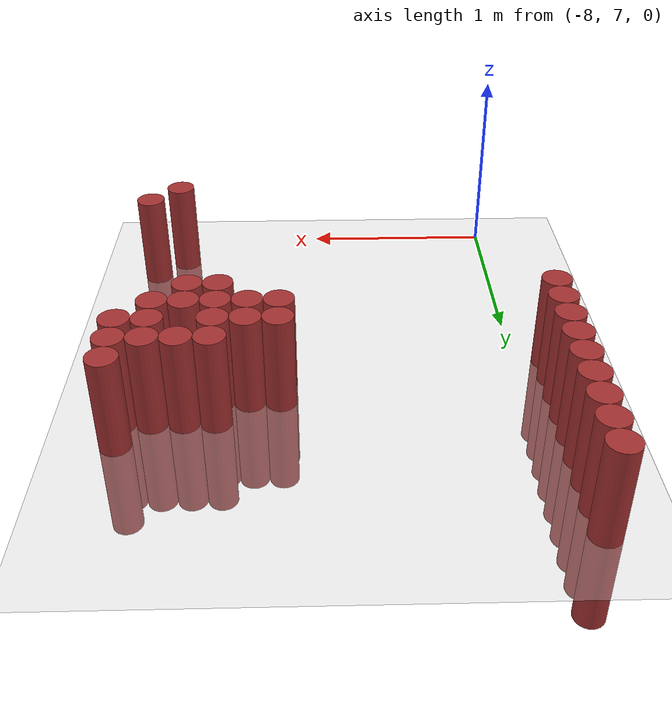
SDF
<sdf version="1.6">
 <world name="default">
  <model name="ground_plane">
   <static>1</static>
   <link name="link">
    <collision name="collision">
     <geometry><plane><normal>0 0 1</normal><size>100 100</size></plane></geometry>
     <surface><friction><ode><mu>100</mu><mu2>50</mu2></ode></friction></surface>
    </collision>
    <visual name="visual">
     <cast_shadows>0</cast_shadows>
     <geometry><plane><normal>0 0 1</normal><size>100 100</size></plane></geometry>
     <material>
      <script><uri>file://media/materials/scripts/gazebo.material</uri><name>Gazebo/Grey</name></script>
     </material>
    </visual>
   </link>
  </model>
  <model name="unit_cylinder_172">
   <static>1</static>
   <pose>-8.175000 8.325000 0.000000 0.000000 0.000000 0.000000</pose>
   <link name="link">
    <inertial>
     <mass>1</mass>
     <inertia><ixx>0.145833</ixx><ixy>0</ixy><ixz>0</ixz><iyy>0.145833</iyy><iyz>0</iyz><izz>0.125</izz></inertia>
    </inertial>
    <collision name="collision">
     <geometry><cylinder><radius>0.075000</radius><length>1</length></cylinder></geometry>
    </collision>
    <visual name="visual">
     <geometry><cylinder><radius>0.075000</radius><length>1</length></cylinder></geometry>
     <material>
      <ambient>0.648000 0.192000 0.192000 1</ambient>
      <diffuse>0.648000 0.192000 0.192000 1</diffuse>
     </material>
     <material>
      <script><name>Gazebo/Grey</name><uri>file://media/materials/scripts/gazebo.material</uri></script>
     </material>
    </visual>
   </link>
  </model>
  <model name="unit_cylinder_173">
   <static>1</static>
   <pose>-8.175000 8.475000 0.000000 0.000000 0.000000 0.000000</pose>
   <link name="link">
    <inertial>
     <mass>1</mass>
     <inertia><ixx>0.145833</ixx><ixy>0</ixy><ixz>0</ixz><iyy>0.145833</iyy><iyz>0</iyz><izz>0.125</izz></inertia>
    </inertial>
    <collision name="collision">
     <geometry><cylinder><radius>0.075000</radius><length>1</length></cylinder></geometry>
    </collision>
    <visual name="visual">
     <geometry><cylinder><radius>0.075000</radius><length>1</length></cylinder></geometry>
     <material>
      <ambient>0.648000 0.192000 0.192000 1</ambient>
      <diffuse>0.648000 0.192000 0.192000 1</diffuse>
     </material>
     <material>
      <script><name>Gazebo/Grey</name><uri>file://media/materials/scripts/gazebo.material</uri></script>
     </material>
    </visual>
   </link>
  </model>
  <model name="unit_cylinder_174">
   <static>1</static>
   <pose>-8.175000 8.625000 0.000000 0.000000 0.000000 0.000000</pose>
   <link name="link">
    <inertial>
     <mass>1</mass>
     <inertia><ixx>0.145833</ixx><ixy>0</ixy><ixz>0</ixz><iyy>0.145833</iyy><iyz>0</iyz><izz>0.125</izz></inertia>
    </inertial>
    <collision name="collision">
     <geometry><cylinder><radius>0.075000</radius><length>1</length></cylinder></geometry>
    </collision>
    <visual name="visual">
     <geometry><cylinder><radius>0.075000</radius><length>1</length></cylinder></geometry>
     <material>
      <ambient>0.648000 0.192000 0.192000 1</ambient>
      <diffuse>0.648000 0.192000 0.192000 1</diffuse>
     </material>
     <material>
      <script><name>Gazebo/Grey</name><uri>file://media/materials/scripts/gazebo.material</uri></script>
     </material>
    </visual>
   </link>
  </model>
  <model name="unit_cylinder_175">
   <static>1</static>
   <pose>-8.175000 8.775000 0.000000 0.000000 0.000000 0.000000</pose>
   <link name="link">
    <inertial>
     <mass>1</mass>
     <inertia><ixx>0.145833</ixx><ixy>0</ixy><ixz>0</ixz><iyy>0.145833</iyy><iyz>0</iyz><izz>0.125</izz></inertia>
    </inertial>
    <collision name="collision">
     <geometry><cylinder><radius>0.075000</radius><length>1</length></cylinder></geometry>
    </collision>
    <visual name="visual">
     <geometry><cylinder><radius>0.075000</radius><length>1</length></cylinder></geometry>
     <material>
      <ambient>0.648000 0.192000 0.192000 1</ambient>
      <diffuse>0.648000 0.192000 0.192000 1</diffuse>
     </material>
     <material>
      <script><name>Gazebo/Grey</name><uri>file://media/materials/scripts/gazebo.material</uri></script>
     </material>
    </visual>
   </link>
  </model>
  <model name="unit_cylinder_176">
   <static>1</static>
   <pose>-8.175000 8.925000 0.000000 0.000000 0.000000 0.000000</pose>
   <link name="link">
    <inertial>
     <mass>1</mass>
     <inertia><ixx>0.145833</ixx><ixy>0</ixy><ixz>0</ixz><iyy>0.145833</iyy><iyz>0</iyz><izz>0.125</izz></inertia>
    </inertial>
    <collision name="collision">
     <geometry><cylinder><radius>0.075000</radius><length>1</length></cylinder></geometry>
    </collision>
    <visual name="visual">
     <geometry><cylinder><radius>0.075000</radius><length>1</length></cylinder></geometry>
     <material>
      <ambient>0.648000 0.192000 0.192000 1</ambient>
      <diffuse>0.648000 0.192000 0.192000 1</diffuse>
     </material>
     <material>
      <script><name>Gazebo/Grey</name><uri>file://media/materials/scripts/gazebo.material</uri></script>
     </material>
    </visual>
   </link>
  </model>
  <model name="unit_cylinder_177">
   <static>1</static>
   <pose>-8.175000 9.075000 0.000000 0.000000 0.000000 0.000000</pose>
   <link name="link">
    <inertial>
     <mass>1</mass>
     <inertia><ixx>0.145833</ixx><ixy>0</ixy><ixz>0</ixz><iyy>0.145833</iyy><iyz>0</iyz><izz>0.125</izz></inertia>
    </inertial>
    <collision name="collision">
     <geometry><cylinder><radius>0.075000</radius><length>1</length></cylinder></geometry>
    </collision>
    <visual name="visual">
     <geometry><cylinder><radius>0.075000</radius><length>1</length></cylinder></geometry>
     <material>
      <ambient>0.648000 0.192000 0.192000 1</ambient>
      <diffuse>0.648000 0.192000 0.192000 1</diffuse>
     </material>
     <material>
      <script><name>Gazebo/Grey</name><uri>file://media/materials/scripts/gazebo.material</uri></script>
     </material>
    </visual>
   </link>
  </model>
  <model name="unit_cylinder_178">
   <static>1</static>
   <pose>-8.175000 9.225000 0.000000 0.000000 0.000000 0.000000</pose>
   <link name="link">
    <inertial>
     <mass>1</mass>
     <inertia><ixx>0.145833</ixx><ixy>0</ixy><ixz>0</ixz><iyy>0.145833</iyy><iyz>0</iyz><izz>0.125</izz></inertia>
    </inertial>
    <collision name="collision">
     <geometry><cylinder><radius>0.075000</radius><length>1</length></cylinder></geometry>
    </collision>
    <visual name="visual">
     <geometry><cylinder><radius>0.075000</radius><length>1</length></cylinder></geometry>
     <material>
      <ambient>0.648000 0.192000 0.192000 1</ambient>
      <diffuse>0.648000 0.192000 0.192000 1</diffuse>
     </material>
     <material>
      <script><name>Gazebo/Grey</name><uri>file://media/materials/scripts/gazebo.material</uri></script>
     </material>
    </visual>
   </link>
  </model>
  <model name="unit_cylinder_179">
   <static>1</static>
   <pose>-8.175000 9.375000 0.000000 0.000000 0.000000 0.000000</pose>
   <link name="link">
    <inertial>
     <mass>1</mass>
     <inertia><ixx>0.145833</ixx><ixy>0</ixy><ixz>0</ixz><iyy>0.145833</iyy><iyz>0</iyz><izz>0.125</izz></inertia>
    </inertial>
    <collision name="collision">
     <geometry><cylinder><radius>0.075000</radius><length>1</length></cylinder></geometry>
    </collision>
    <visual name="visual">
     <geometry><cylinder><radius>0.075000</radius><length>1</length></cylinder></geometry>
     <material>
      <ambient>0.648000 0.192000 0.192000 1</ambient>
      <diffuse>0.648000 0.192000 0.192000 1</diffuse>
     </material>
     <material>
      <script><name>Gazebo/Grey</name><uri>file://media/materials/scripts/gazebo.material</uri></script>
     </material>
    </visual>
   </link>
  </model>
  <model name="unit_cylinder_180">
   <static>1</static>
   <pose>-8.175000 9.525000 0.000000 0.000000 0.000000 0.000000</pose>
   <link name="link">
    <inertial>
     <mass>1</mass>
     <inertia><ixx>0.145833</ixx><ixy>0</ixy><ixz>0</ixz><iyy>0.145833</iyy><iyz>0</iyz><izz>0.125</izz></inertia>
    </inertial>
    <collision name="collision">
     <geometry><cylinder><radius>0.075000</radius><length>1</length></cylinder></geometry>
    </collision>
    <visual name="visual">
     <geometry><cylinder><radius>0.075000</radius><length>1</length></cylinder></geometry>
     <material>
      <ambient>0.648000 0.192000 0.192000 1</ambient>
      <diffuse>0.648000 0.192000 0.192000 1</diffuse>
     </material>
     <material>
      <script><name>Gazebo/Grey</name><uri>file://media/materials/scripts/gazebo.material</uri></script>
     </material>
    </visual>
   </link>
  </model>
  <model name="unit_cylinder_198">
   <static>1</static>
   <pose>-6.825000 8.475000 0.000000 0.000000 0.000000 0.000000</pose>
   <link name="link">
    <inertial>
     <mass>1</mass>
     <inertia><ixx>0.145833</ixx><ixy>0</ixy><ixz>0</ixz><iyy>0.145833</iyy><iyz>0</iyz><izz>0.125</izz></inertia>
    </inertial>
    <collision name="collision">
     <geometry><cylinder><radius>0.075000</radius><length>1</length></cylinder></geometry>
    </collision>
    <visual name="visual">
     <geometry><cylinder><radius>0.075000</radius><length>1</length></cylinder></geometry>
     <material>
      <ambient>0.648000 0.192000 0.192000 1</ambient>
      <diffuse>0.648000 0.192000 0.192000 1</diffuse>
     </material>
     <material>
      <script><name>Gazebo/Grey</name><uri>file://media/materials/scripts/gazebo.material</uri></script>
     </material>
    </visual>
   </link>
  </model>
  <model name="unit_cylinder_199">
   <static>1</static>
   <pose>-6.825000 8.625000 0.000000 0.000000 0.000000 0.000000</pose>
   <link name="link">
    <inertial>
     <mass>1</mass>
     <inertia><ixx>0.145833</ixx><ixy>0</ixy><ixz>0</ixz><iyy>0.145833</iyy><iyz>0</iyz><izz>0.125</izz></inertia>
    </inertial>
    <collision name="collision">
     <geometry><cylinder><radius>0.075000</radius><length>1</length></cylinder></geometry>
    </collision>
    <visual name="visual">
     <geometry><cylinder><radius>0.075000</radius><length>1</length></cylinder></geometry>
     <material>
      <ambient>0.648000 0.192000 0.192000 1</ambient>
      <diffuse>0.648000 0.192000 0.192000 1</diffuse>
     </material>
     <material>
      <script><name>Gazebo/Grey</name><uri>file://media/materials/scripts/gazebo.material</uri></script>
     </material>
    </visual>
   </link>
  </model>
  <model name="unit_cylinder_200">
   <static>1</static>
   <pose>-6.675000 8.475000 0.000000 0.000000 0.000000 0.000000</pose>
   <link name="link">
    <inertial>
     <mass>1</mass>
     <inertia><ixx>0.145833</ixx><ixy>0</ixy><ixz>0</ixz><iyy>0.145833</iyy><iyz>0</iyz><izz>0.125</izz></inertia>
    </inertial>
    <collision name="collision">
     <geometry><cylinder><radius>0.075000</radius><length>1</length></cylinder></geometry>
    </collision>
    <visual name="visual">
     <geometry><cylinder><radius>0.075000</radius><length>1</length></cylinder></geometry>
     <material>
      <ambient>0.648000 0.192000 0.192000 1</ambient>
      <diffuse>0.648000 0.192000 0.192000 1</diffuse>
     </material>
     <material>
      <script><name>Gazebo/Grey</name><uri>file://media/materials/scripts/gazebo.material</uri></script>
     </material>
    </visual>
   </link>
  </model>
  <model name="unit_cylinder_201">
   <static>1</static>
   <pose>-6.675000 8.625000 0.000000 0.000000 0.000000 0.000000</pose>
   <link name="link">
    <inertial>
     <mass>1</mass>
     <inertia><ixx>0.145833</ixx><ixy>0</ixy><ixz>0</ixz><iyy>0.145833</iyy><iyz>0</iyz><izz>0.125</izz></inertia>
    </inertial>
    <collision name="collision">
     <geometry><cylinder><radius>0.075000</radius><length>1</length></cylinder></geometry>
    </collision>
    <visual name="visual">
     <geometry><cylinder><radius>0.075000</radius><length>1</length></cylinder></geometry>
     <material>
      <ambient>0.648000 0.192000 0.192000 1</ambient>
      <diffuse>0.648000 0.192000 0.192000 1</diffuse>
     </material>
     <material>
      <script><name>Gazebo/Grey</name><uri>file://media/materials/scripts/gazebo.material</uri></script>
     </material>
    </visual>
   </link>
  </model>
  <model name="unit_cylinder_204">
   <static>1</static>
   <pose>-6.525000 8.325000 0.000000 0.000000 0.000000 0.000000</pose>
   <link name="link">
    <inertial>
     <mass>1</mass>
     <inertia><ixx>0.145833</ixx><ixy>0</ixy><ixz>0</ixz><iyy>0.145833</iyy><iyz>0</iyz><izz>0.125</izz></inertia>
    </inertial>
    <collision name="collision">
     <geometry><cylinder><radius>0.075000</radius><length>1</length></cylinder></geometry>
    </collision>
    <visual name="visual">
     <geometry><cylinder><radius>0.075000</radius><length>1</length></cylinder></geometry>
     <material>
      <ambient>0.648000 0.192000 0.192000 1</ambient>
      <diffuse>0.648000 0.192000 0.192000 1</diffuse>
     </material>
     <material>
      <script><name>Gazebo/Grey</name><uri>file://media/materials/scripts/gazebo.material</uri></script>
     </material>
    </visual>
   </link>
  </model>
  <model name="unit_cylinder_205">
   <static>1</static>
   <pose>-6.525000 8.475000 0.000000 0.000000 0.000000 0.000000</pose>
   <link name="link">
    <inertial>
     <mass>1</mass>
     <inertia><ixx>0.145833</ixx><ixy>0</ixy><ixz>0</ixz><iyy>0.145833</iyy><iyz>0</iyz><izz>0.125</izz></inertia>
    </inertial>
    <collision name="collision">
     <geometry><cylinder><radius>0.075000</radius><length>1</length></cylinder></geometry>
    </collision>
    <visual name="visual">
     <geometry><cylinder><radius>0.075000</radius><length>1</length></cylinder></geometry>
     <material>
      <ambient>0.648000 0.192000 0.192000 1</ambient>
      <diffuse>0.648000 0.192000 0.192000 1</diffuse>
     </material>
     <material>
      <script><name>Gazebo/Grey</name><uri>file://media/materials/scripts/gazebo.material</uri></script>
     </material>
    </visual>
   </link>
  </model>
  <model name="unit_cylinder_206">
   <static>1</static>
   <pose>-6.525000 8.625000 0.000000 0.000000 0.000000 0.000000</pose>
   <link name="link">
    <inertial>
     <mass>1</mass>
     <inertia><ixx>0.145833</ixx><ixy>0</ixy><ixz>0</ixz><iyy>0.145833</iyy><iyz>0</iyz><izz>0.125</izz></inertia>
    </inertial>
    <collision name="collision">
     <geometry><cylinder><radius>0.075000</radius><length>1</length></cylinder></geometry>
    </collision>
    <visual name="visual">
     <geometry><cylinder><radius>0.075000</radius><length>1</length></cylinder></geometry>
     <material>
      <ambient>0.648000 0.192000 0.192000 1</ambient>
      <diffuse>0.648000 0.192000 0.192000 1</diffuse>
     </material>
     <material>
      <script><name>Gazebo/Grey</name><uri>file://media/materials/scripts/gazebo.material</uri></script>
     </material>
    </visual>
   </link>
  </model>
  <model name="unit_cylinder_207">
   <static>1</static>
   <pose>-6.525000 8.775000 0.000000 0.000000 0.000000 0.000000</pose>
   <link name="link">
    <inertial>
     <mass>1</mass>
     <inertia><ixx>0.145833</ixx><ixy>0</ixy><ixz>0</ixz><iyy>0.145833</iyy><iyz>0</iyz><izz>0.125</izz></inertia>
    </inertial>
    <collision name="collision">
     <geometry><cylinder><radius>0.075000</radius><length>1</length></cylinder></geometry>
    </collision>
    <visual name="visual">
     <geometry><cylinder><radius>0.075000</radius><length>1</length></cylinder></geometry>
     <material>
      <ambient>0.648000 0.192000 0.192000 1</ambient>
      <diffuse>0.648000 0.192000 0.192000 1</diffuse>
     </material>
     <material>
      <script><name>Gazebo/Grey</name><uri>file://media/materials/scripts/gazebo.material</uri></script>
     </material>
    </visual>
   </link>
  </model>
  <model name="unit_cylinder_214">
   <static>1</static>
   <pose>-6.375000 8.325000 0.000000 0.000000 0.000000 0.000000</pose>
   <link name="link">
    <inertial>
     <mass>1</mass>
     <inertia><ixx>0.145833</ixx><ixy>0</ixy><ixz>0</ixz><iyy>0.145833</iyy><iyz>0</iyz><izz>0.125</izz></inertia>
    </inertial>
    <collision name="collision">
     <geometry><cylinder><radius>0.075000</radius><length>1</length></cylinder></geometry>
    </collision>
    <visual name="visual">
     <geometry><cylinder><radius>0.075000</radius><length>1</length></cylinder></geometry>
     <material>
      <ambient>0.648000 0.192000 0.192000 1</ambient>
      <diffuse>0.648000 0.192000 0.192000 1</diffuse>
     </material>
     <material>
      <script><name>Gazebo/Grey</name><uri>file://media/materials/scripts/gazebo.material</uri></script>
     </material>
    </visual>
   </link>
  </model>
  <model name="unit_cylinder_215">
   <static>1</static>
   <pose>-6.375000 8.475000 0.000000 0.000000 0.000000 0.000000</pose>
   <link name="link">
    <inertial>
     <mass>1</mass>
     <inertia><ixx>0.145833</ixx><ixy>0</ixy><ixz>0</ixz><iyy>0.145833</iyy><iyz>0</iyz><izz>0.125</izz></inertia>
    </inertial>
    <collision name="collision">
     <geometry><cylinder><radius>0.075000</radius><length>1</length></cylinder></geometry>
    </collision>
    <visual name="visual">
     <geometry><cylinder><radius>0.075000</radius><length>1</length></cylinder></geometry>
     <material>
      <ambient>0.648000 0.192000 0.192000 1</ambient>
      <diffuse>0.648000 0.192000 0.192000 1</diffuse>
     </material>
     <material>
      <script><name>Gazebo/Grey</name><uri>file://media/materials/scripts/gazebo.material</uri></script>
     </material>
    </visual>
   </link>
  </model>
  <model name="unit_cylinder_216">
   <static>1</static>
   <pose>-6.375000 8.775000 0.000000 0.000000 0.000000 0.000000</pose>
   <link name="link">
    <inertial>
     <mass>1</mass>
     <inertia><ixx>0.145833</ixx><ixy>0</ixy><ixz>0</ixz><iyy>0.145833</iyy><iyz>0</iyz><izz>0.125</izz></inertia>
    </inertial>
    <collision name="collision">
     <geometry><cylinder><radius>0.075000</radius><length>1</length></cylinder></geometry>
    </collision>
    <visual name="visual">
     <geometry><cylinder><radius>0.075000</radius><length>1</length></cylinder></geometry>
     <material>
      <ambient>0.648000 0.192000 0.192000 1</ambient>
      <diffuse>0.648000 0.192000 0.192000 1</diffuse>
     </material>
     <material>
      <script><name>Gazebo/Grey</name><uri>file://media/materials/scripts/gazebo.material</uri></script>
     </material>
    </visual>
   </link>
  </model>
  <model name="unit_cylinder_227">
   <static>1</static>
   <pose>-6.225000 7.275000 0.000000 0.000000 0.000000 0.000000</pose>
   <link name="link">
    <inertial>
     <mass>1</mass>
     <inertia><ixx>0.145833</ixx><ixy>0</ixy><ixz>0</ixz><iyy>0.145833</iyy><iyz>0</iyz><izz>0.125</izz></inertia>
    </inertial>
    <collision name="collision">
     <geometry><cylinder><radius>0.075000</radius><length>1</length></cylinder></geometry>
    </collision>
    <visual name="visual">
     <geometry><cylinder><radius>0.075000</radius><length>1</length></cylinder></geometry>
     <material>
      <ambient>0.648000 0.192000 0.192000 1</ambient>
      <diffuse>0.648000 0.192000 0.192000 1</diffuse>
     </material>
     <material>
      <script><name>Gazebo/Grey</name><uri>file://media/materials/scripts/gazebo.material</uri></script>
     </material>
    </visual>
   </link>
  </model>
  <model name="unit_cylinder_228">
   <static>1</static>
   <pose>-6.225000 8.475000 0.000000 0.000000 0.000000 0.000000</pose>
   <link name="link">
    <inertial>
     <mass>1</mass>
     <inertia><ixx>0.145833</ixx><ixy>0</ixy><ixz>0</ixz><iyy>0.145833</iyy><iyz>0</iyz><izz>0.125</izz></inertia>
    </inertial>
    <collision name="collision">
     <geometry><cylinder><radius>0.075000</radius><length>1</length></cylinder></geometry>
    </collision>
    <visual name="visual">
     <geometry><cylinder><radius>0.075000</radius><length>1</length></cylinder></geometry>
     <material>
      <ambient>0.648000 0.192000 0.192000 1</ambient>
      <diffuse>0.648000 0.192000 0.192000 1</diffuse>
     </material>
     <material>
      <script><name>Gazebo/Grey</name><uri>file://media/materials/scripts/gazebo.material</uri></script>
     </material>
    </visual>
   </link>
  </model>
  <model name="unit_cylinder_229">
   <static>1</static>
   <pose>-6.225000 8.625000 0.000000 0.000000 0.000000 0.000000</pose>
   <link name="link">
    <inertial>
     <mass>1</mass>
     <inertia><ixx>0.145833</ixx><ixy>0</ixy><ixz>0</ixz><iyy>0.145833</iyy><iyz>0</iyz><izz>0.125</izz></inertia>
    </inertial>
    <collision name="collision">
     <geometry><cylinder><radius>0.075000</radius><length>1</length></cylinder></geometry>
    </collision>
    <visual name="visual">
     <geometry><cylinder><radius>0.075000</radius><length>1</length></cylinder></geometry>
     <material>
      <ambient>0.648000 0.192000 0.192000 1</ambient>
      <diffuse>0.648000 0.192000 0.192000 1</diffuse>
     </material>
     <material>
      <script><name>Gazebo/Grey</name><uri>file://media/materials/scripts/gazebo.material</uri></script>
     </material>
    </visual>
   </link>
  </model>
  <model name="unit_cylinder_230">
   <static>1</static>
   <pose>-6.225000 8.775000 0.000000 0.000000 0.000000 0.000000</pose>
   <link name="link">
    <inertial>
     <mass>1</mass>
     <inertia><ixx>0.145833</ixx><ixy>0</ixy><ixz>0</ixz><iyy>0.145833</iyy><iyz>0</iyz><izz>0.125</izz></inertia>
    </inertial>
    <collision name="collision">
     <geometry><cylinder><radius>0.075000</radius><length>1</length></cylinder></geometry>
    </collision>
    <visual name="visual">
     <geometry><cylinder><radius>0.075000</radius><length>1</length></cylinder></geometry>
     <material>
      <ambient>0.648000 0.192000 0.192000 1</ambient>
      <diffuse>0.648000 0.192000 0.192000 1</diffuse>
     </material>
     <material>
      <script><name>Gazebo/Grey</name><uri>file://media/materials/scripts/gazebo.material</uri></script>
     </material>
    </visual>
   </link>
  </model>
  <model name="unit_cylinder_238">
   <static>1</static>
   <pose>-6.075000 7.425000 0.000000 0.000000 0.000000 0.000000</pose>
   <link name="link">
    <inertial>
     <mass>1</mass>
     <inertia><ixx>0.145833</ixx><ixy>0</ixy><ixz>0</ixz><iyy>0.145833</iyy><iyz>0</iyz><izz>0.125</izz></inertia>
    </inertial>
    <collision name="collision">
     <geometry><cylinder><radius>0.075000</radius><length>1</length></cylinder></geometry>
    </collision>
    <visual name="visual">
     <geometry><cylinder><radius>0.075000</radius><length>1</length></cylinder></geometry>
     <material>
      <ambient>0.648000 0.192000 0.192000 1</ambient>
      <diffuse>0.648000 0.192000 0.192000 1</diffuse>
     </material>
     <material>
      <script><name>Gazebo/Grey</name><uri>file://media/materials/scripts/gazebo.material</uri></script>
     </material>
    </visual>
   </link>
  </model>
  <model name="unit_cylinder_239">
   <static>1</static>
   <pose>-6.075000 8.625000 0.000000 0.000000 0.000000 0.000000</pose>
   <link name="link">
    <inertial>
     <mass>1</mass>
     <inertia><ixx>0.145833</ixx><ixy>0</ixy><ixz>0</ixz><iyy>0.145833</iyy><iyz>0</iyz><izz>0.125</izz></inertia>
    </inertial>
    <collision name="collision">
     <geometry><cylinder><radius>0.075000</radius><length>1</length></cylinder></geometry>
    </collision>
    <visual name="visual">
     <geometry><cylinder><radius>0.075000</radius><length>1</length></cylinder></geometry>
     <material>
      <ambient>0.648000 0.192000 0.192000 1</ambient>
      <diffuse>0.648000 0.192000 0.192000 1</diffuse>
     </material>
     <material>
      <script><name>Gazebo/Grey</name><uri>file://media/materials/scripts/gazebo.material</uri></script>
     </material>
    </visual>
   </link>
  </model>
  <model name="unit_cylinder_240">
   <static>1</static>
   <pose>-6.075000 8.775000 0.000000 0.000000 0.000000 0.000000</pose>
   <link name="link">
    <inertial>
     <mass>1</mass>
     <inertia><ixx>0.145833</ixx><ixy>0</ixy><ixz>0</ixz><iyy>0.145833</iyy><iyz>0</iyz><izz>0.125</izz></inertia>
    </inertial>
    <collision name="collision">
     <geometry><cylinder><radius>0.075000</radius><length>1</length></cylinder></geometry>
    </collision>
    <visual name="visual">
     <geometry><cylinder><radius>0.075000</radius><length>1</length></cylinder></geometry>
     <material>
      <ambient>0.648000 0.192000 0.192000 1</ambient>
      <diffuse>0.648000 0.192000 0.192000 1</diffuse>
     </material>
     <material>
      <script><name>Gazebo/Grey</name><uri>file://media/materials/scripts/gazebo.material</uri></script>
     </material>
    </visual>
   </link>
  </model>
  <model name="unit_cylinder_241">
   <static>1</static>
   <pose>-6.075000 8.925000 0.000000 0.000000 0.000000 0.000000</pose>
   <link name="link">
    <inertial>
     <mass>1</mass>
     <inertia><ixx>0.145833</ixx><ixy>0</ixy><ixz>0</ixz><iyy>0.145833</iyy><iyz>0</iyz><izz>0.125</izz></inertia>
    </inertial>
    <collision name="collision">
     <geometry><cylinder><radius>0.075000</radius><length>1</length></cylinder></geometry>
    </collision>
    <visual name="visual">
     <geometry><cylinder><radius>0.075000</radius><length>1</length></cylinder></geometry>
     <material>
      <ambient>0.648000 0.192000 0.192000 1</ambient>
      <diffuse>0.648000 0.192000 0.192000 1</diffuse>
     </material>
     <material>
      <script><name>Gazebo/Grey</name><uri>file://media/materials/scripts/gazebo.material</uri></script>
     </material>
    </visual>
   </link>
  </model>
 </world>
</sdf>
